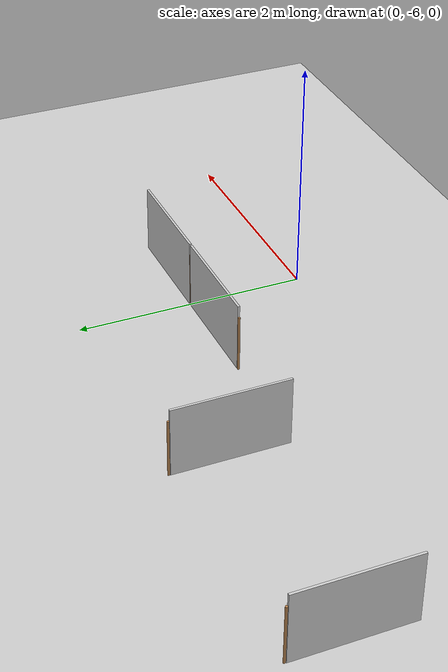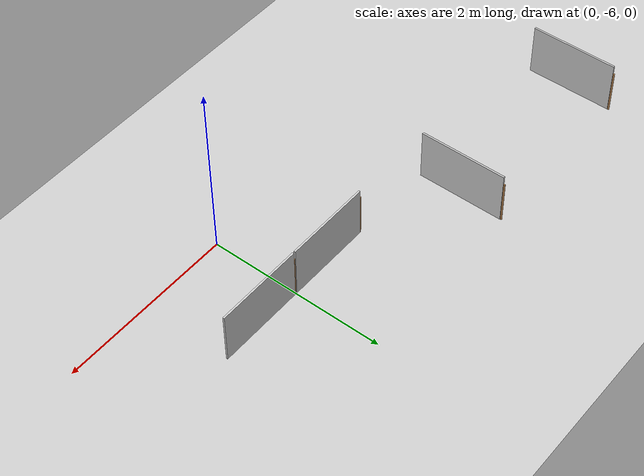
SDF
<sdf version="1.7">
 <world name="default">
  <model name="ground_plane">
   <static>true</static>
   <link name="link">
    <collision name="collision">
     <geometry><plane><normal>0 0 1</normal><size>1 1</size></plane></geometry>
    </collision>
    <visual name="visual">
     <geometry><plane><normal>0 0 1</normal><size>100 100</size></plane></geometry>
     <material>
      <ambient>0.8 0.8 0.8 1</ambient>
      <diffuse>0.8 0.8 0.8 1</diffuse>
      <specular>0.8 0.8 0.8 1</specular>
     </material>
    </visual>
    <inertial>
     <mass>1</mass>
     <inertia><ixx>1</ixx><ixy>0</ixy><ixz>0</ixz><iyy>1</iyy><iyz>0</iyz><izz>1</izz></inertia>
    </inertial>
   </link>
  </model>
  <model name="maze_1_6x5_clone_1">
   <frame name="plywood_panel_0_0_b::__model__" attached_to="plywood_panel_0_0_b::main">
    <pose relative_to="__model__">0 0 0 0 -0 1.571</pose>
   </frame>
   <static>true</static>
   <link name="plywood_panel_0_0_b::main">
    <pose relative_to="plywood_panel_0_0_b::__model__">0 0 0 0 -0 0</pose>
    <collision name="collision">
     <pose>0 -0.5 0.3 -1.571 -0 -1.571</pose>
     <geometry><box><size>0.98 0.6 0.02</size></box></geometry>
    </collision>
    <visual name="visual">
     <pose>0.01 -0.01 0 3.14159 -1.57059 3.14159</pose>
     <geometry>
      <mesh>
       <scale>1 1 1</scale>
       <uri>/home/mayank/cognipilot/cranium/src/dream_world/models/plywood_panel/meshes/plywood.dae</uri>
      </mesh>
     </geometry>
    </visual>
   </link>
   <frame name="wooden_joint_0_0_b::__model__" attached_to="wooden_joint_0_0_b::link_0">
    <pose relative_to="__model__">0 0 0 0 -0 0</pose>
   </frame>
   <link name="wooden_joint_0_0_b::link_0">
    <pose relative_to="wooden_joint_0_0_b::__model__">0 0 0.25 0 -0 0</pose>
    <inertial>
     <mass>0.00215981</mass>
     <inertia>
      <ixx>0.00018028</ixx>
      <ixy>0</ixy>
      <ixz>0</ixz>
      <iyy>0.00018028</iyy>
      <iyz>0</iyz>
      <izz>5.8e-07</izz>
     </inertia>
    </inertial>
    <visual name="visual">
     <geometry><cylinder><radius>0.01</radius><length>0.5</length></cylinder></geometry>
     <material>
      <lighting>1</lighting>
      <script><uri>file://media/materials/scripts/gazebo.material</uri><name>Gazebo/Wood</name></script>
      <shader type="pixel"><normal_map>__default__</normal_map></shader>
      <ambient>0.3 0.3 0.3 1</ambient>
      <diffuse>0.7 0.7 0.7 1</diffuse>
      <specular>0.01 0.01 0.01 1</specular>
      <emissive>0 0 0 1</emissive>
     </material>
    </visual>
    <collision name="collision">
     <geometry><cylinder><radius>0.01</radius><length>0.5</length></cylinder></geometry>
     <surface>
      <friction>
       <ode><mu>1</mu><mu2>1</mu2><fdir1>0 0 0</fdir1><slip1>0</slip1><slip2>0</slip2></ode>
       <torsional>
        <coefficient>1</coefficient>
        <patch_radius>0</patch_radius>
        <surface_radius>0</surface_radius>
        <use_patch_radius>1</use_patch_radius>
        <ode><slip>0</slip></ode>
       </torsional>
      </friction>
      <bounce><restitution_coefficient>0</restitution_coefficient><threshold>1e+06</threshold></bounce>
      <contact>
       <collide_without_contact>0</collide_without_contact>
       <collide_without_contact_bitmask>1</collide_without_contact_bitmask>
       <collide_bitmask>1</collide_bitmask>
       <ode>
        <soft_cfm>0</soft_cfm>
        <soft_erp>0.2</soft_erp>
        <kp>1e+13</kp>
        <kd>1</kd>
        <max_vel>0.01</max_vel>
        <min_depth>0</min_depth>
       </ode>
       <bullet>
        <split_impulse>1</split_impulse>
        <split_impulse_penetration_threshold>-0.01</split_impulse_penetration_threshold>
        <soft_cfm>0</soft_cfm>
        <soft_erp>0.2</soft_erp>
        <kp>1e+13</kp>
        <kd>1</kd>
       </bullet>
      </contact>
     </surface>
    </collision>
   </link>
   <static>true</static>
   <pose>-2 -4 0 0 0 -1.5708</pose>
  </model>
  <model name="maze_1_6x5_clone_2_clone">
   <frame name="plywood_panel_0_0_b::__model__" attached_to="plywood_panel_0_0_b::main">
    <pose relative_to="__model__">0 0 0 0 -0 1.571</pose>
   </frame>
   <static>true</static>
   <link name="plywood_panel_0_0_b::main">
    <pose relative_to="plywood_panel_0_0_b::__model__">0 0 0 0 -0 0</pose>
    <collision name="collision">
     <pose>0 -0.5 0.3 -1.571 -0 -1.571</pose>
     <geometry><box><size>0.98 0.6 0.02</size></box></geometry>
    </collision>
    <visual name="visual">
     <pose>0.01 -0.01 0 3.14159 -1.57059 3.14159</pose>
     <geometry>
      <mesh>
       <scale>1 1 1</scale>
       <uri>/home/mayank/cognipilot/cranium/src/dream_world/models/plywood_panel/meshes/plywood.dae</uri>
      </mesh>
     </geometry>
    </visual>
   </link>
   <frame name="wooden_joint_0_0_b::__model__" attached_to="wooden_joint_0_0_b::link_0">
    <pose relative_to="__model__">0 0 0 0 -0 0</pose>
   </frame>
   <link name="wooden_joint_0_0_b::link_0">
    <pose relative_to="wooden_joint_0_0_b::__model__">0 0 0.25 0 -0 0</pose>
    <inertial>
     <mass>0.00215981</mass>
     <inertia>
      <ixx>0.00018028</ixx>
      <ixy>0</ixy>
      <ixz>0</ixz>
      <iyy>0.00018028</iyy>
      <iyz>0</iyz>
      <izz>5.8e-07</izz>
     </inertia>
    </inertial>
    <visual name="visual">
     <geometry><cylinder><radius>0.01</radius><length>0.5</length></cylinder></geometry>
     <material>
      <lighting>1</lighting>
      <script><uri>file://media/materials/scripts/gazebo.material</uri><name>Gazebo/Wood</name></script>
      <shader type="pixel"><normal_map>__default__</normal_map></shader>
      <ambient>0.3 0.3 0.3 1</ambient>
      <diffuse>0.7 0.7 0.7 1</diffuse>
      <specular>0.01 0.01 0.01 1</specular>
      <emissive>0 0 0 1</emissive>
     </material>
    </visual>
    <collision name="collision">
     <geometry><cylinder><radius>0.01</radius><length>0.5</length></cylinder></geometry>
     <surface>
      <friction>
       <ode><mu>1</mu><mu2>1</mu2><fdir1>0 0 0</fdir1><slip1>0</slip1><slip2>0</slip2></ode>
       <torsional>
        <coefficient>1</coefficient>
        <patch_radius>0</patch_radius>
        <surface_radius>0</surface_radius>
        <use_patch_radius>1</use_patch_radius>
        <ode><slip>0</slip></ode>
       </torsional>
      </friction>
      <bounce><restitution_coefficient>0</restitution_coefficient><threshold>1e+06</threshold></bounce>
      <contact>
       <collide_without_contact>0</collide_without_contact>
       <collide_without_contact_bitmask>1</collide_without_contact_bitmask>
       <collide_bitmask>1</collide_bitmask>
       <ode>
        <soft_cfm>0</soft_cfm>
        <soft_erp>0.2</soft_erp>
        <kp>1e+13</kp>
        <kd>1</kd>
        <max_vel>0.01</max_vel>
        <min_depth>0</min_depth>
       </ode>
       <bullet>
        <split_impulse>1</split_impulse>
        <split_impulse_penetration_threshold>-0.01</split_impulse_penetration_threshold>
        <soft_cfm>0</soft_cfm>
        <soft_erp>0.2</soft_erp>
        <kp>1e+13</kp>
        <kd>1</kd>
       </bullet>
      </contact>
     </surface>
    </collision>
   </link>
   <static>true</static>
   <pose>-1 -5 0 0 0 -4e-06</pose>
  </model>
  <model name="maze_1_6x5_clone_2_clone_clone">
   <frame name="plywood_panel_0_0_b::__model__" attached_to="plywood_panel_0_0_b::main">
    <pose relative_to="__model__">0 0 0 0 -0 1.571</pose>
   </frame>
   <static>true</static>
   <link name="plywood_panel_0_0_b::main">
    <pose relative_to="plywood_panel_0_0_b::__model__">0 0 0 0 -0 0</pose>
    <collision name="collision">
     <pose>0 -0.5 0.3 -1.571 -0 -1.571</pose>
     <geometry><box><size>0.98 0.6 0.02</size></box></geometry>
    </collision>
    <visual name="visual">
     <pose>0.01 -0.01 0 3.14159 -1.57059 3.14159</pose>
     <geometry>
      <mesh>
       <scale>1 1 1</scale>
       <uri>/home/mayank/cognipilot/cranium/src/dream_world/models/plywood_panel/meshes/plywood.dae</uri>
      </mesh>
     </geometry>
    </visual>
   </link>
   <frame name="wooden_joint_0_0_b::__model__" attached_to="wooden_joint_0_0_b::link_0">
    <pose relative_to="__model__">0 0 0 0 -0 0</pose>
   </frame>
   <link name="wooden_joint_0_0_b::link_0">
    <pose relative_to="wooden_joint_0_0_b::__model__">0 0 0.25 0 -0 0</pose>
    <inertial>
     <mass>0.00215981</mass>
     <inertia>
      <ixx>0.00018028</ixx>
      <ixy>0</ixy>
      <ixz>0</ixz>
      <iyy>0.00018028</iyy>
      <iyz>0</iyz>
      <izz>5.8e-07</izz>
     </inertia>
    </inertial>
    <visual name="visual">
     <geometry><cylinder><radius>0.01</radius><length>0.5</length></cylinder></geometry>
     <material>
      <lighting>1</lighting>
      <script><uri>file://media/materials/scripts/gazebo.material</uri><name>Gazebo/Wood</name></script>
      <shader type="pixel"><normal_map>__default__</normal_map></shader>
      <ambient>0.3 0.3 0.3 1</ambient>
      <diffuse>0.7 0.7 0.7 1</diffuse>
      <specular>0.01 0.01 0.01 1</specular>
      <emissive>0 0 0 1</emissive>
     </material>
    </visual>
    <collision name="collision">
     <geometry><cylinder><radius>0.01</radius><length>0.5</length></cylinder></geometry>
     <surface>
      <friction>
       <ode><mu>1</mu><mu2>1</mu2><fdir1>0 0 0</fdir1><slip1>0</slip1><slip2>0</slip2></ode>
       <torsional>
        <coefficient>1</coefficient>
        <patch_radius>0</patch_radius>
        <surface_radius>0</surface_radius>
        <use_patch_radius>1</use_patch_radius>
        <ode><slip>0</slip></ode>
       </torsional>
      </friction>
      <bounce><restitution_coefficient>0</restitution_coefficient><threshold>1e+06</threshold></bounce>
      <contact>
       <collide_without_contact>0</collide_without_contact>
       <collide_without_contact_bitmask>1</collide_without_contact_bitmask>
       <collide_bitmask>1</collide_bitmask>
       <ode>
        <soft_cfm>0</soft_cfm>
        <soft_erp>0.2</soft_erp>
        <kp>1e+13</kp>
        <kd>1</kd>
        <max_vel>0.01</max_vel>
        <min_depth>0</min_depth>
       </ode>
       <bullet>
        <split_impulse>1</split_impulse>
        <split_impulse_penetration_threshold>-0.01</split_impulse_penetration_threshold>
        <soft_cfm>0</soft_cfm>
        <soft_erp>0.2</soft_erp>
        <kp>1e+13</kp>
        <kd>1</kd>
       </bullet>
      </contact>
     </surface>
    </collision>
   </link>
   <static>true</static>
   <pose>0 -5 0 0 0 -4e-06</pose>
  </model>
  <model name="maze_1_6x5_clone_clone_11">
   <frame name="plywood_panel_0_0_b::__model__" attached_to="plywood_panel_0_0_b::main">
    <pose relative_to="__model__">0 0 0 0 -0 1.571</pose>
   </frame>
   <static>true</static>
   <link name="plywood_panel_0_0_b::main">
    <pose relative_to="plywood_panel_0_0_b::__model__">0 0 0 0 -0 0</pose>
    <collision name="collision">
     <pose>0 -0.5 0.3 -1.571 -0 -1.571</pose>
     <geometry><box><size>0.98 0.6 0.02</size></box></geometry>
    </collision>
    <visual name="visual">
     <pose>0.01 -0.01 0 3.14159 -1.57059 3.14159</pose>
     <geometry>
      <mesh>
       <scale>1 1 1</scale>
       <uri>/home/mayank/cognipilot/cranium/src/dream_world/models/plywood_panel/meshes/plywood.dae</uri>
      </mesh>
     </geometry>
    </visual>
   </link>
   <frame name="wooden_joint_0_0_b::__model__" attached_to="wooden_joint_0_0_b::link_0">
    <pose relative_to="__model__">0 0 0 0 -0 0</pose>
   </frame>
   <link name="wooden_joint_0_0_b::link_0">
    <pose relative_to="wooden_joint_0_0_b::__model__">0 0 0.25 0 -0 0</pose>
    <inertial>
     <mass>0.00215981</mass>
     <inertia>
      <ixx>0.00018028</ixx>
      <ixy>0</ixy>
      <ixz>0</ixz>
      <iyy>0.00018028</iyy>
      <iyz>0</iyz>
      <izz>5.8e-07</izz>
     </inertia>
    </inertial>
    <visual name="visual">
     <geometry><cylinder><radius>0.01</radius><length>0.5</length></cylinder></geometry>
     <material>
      <lighting>1</lighting>
      <script><uri>file://media/materials/scripts/gazebo.material</uri><name>Gazebo/Wood</name></script>
      <shader type="pixel"><normal_map>__default__</normal_map></shader>
      <ambient>0.3 0.3 0.3 1</ambient>
      <diffuse>0.7 0.7 0.7 1</diffuse>
      <specular>0.01 0.01 0.01 1</specular>
      <emissive>0 0 0 1</emissive>
     </material>
    </visual>
    <collision name="collision">
     <geometry><cylinder><radius>0.01</radius><length>0.5</length></cylinder></geometry>
     <surface>
      <friction>
       <ode><mu>1</mu><mu2>1</mu2><fdir1>0 0 0</fdir1><slip1>0</slip1><slip2>0</slip2></ode>
       <torsional>
        <coefficient>1</coefficient>
        <patch_radius>0</patch_radius>
        <surface_radius>0</surface_radius>
        <use_patch_radius>1</use_patch_radius>
        <ode><slip>0</slip></ode>
       </torsional>
      </friction>
      <bounce><restitution_coefficient>0</restitution_coefficient><threshold>1e+06</threshold></bounce>
      <contact>
       <collide_without_contact>0</collide_without_contact>
       <collide_without_contact_bitmask>1</collide_without_contact_bitmask>
       <collide_bitmask>1</collide_bitmask>
       <ode>
        <soft_cfm>0</soft_cfm>
        <soft_erp>0.2</soft_erp>
        <kp>1e+13</kp>
        <kd>1</kd>
        <max_vel>0.01</max_vel>
        <min_depth>0</min_depth>
       </ode>
       <bullet>
        <split_impulse>1</split_impulse>
        <split_impulse_penetration_threshold>-0.01</split_impulse_penetration_threshold>
        <soft_cfm>0</soft_cfm>
        <soft_erp>0.2</soft_erp>
        <kp>1e+13</kp>
        <kd>1</kd>
       </bullet>
      </contact>
     </surface>
    </collision>
   </link>
   <static>true</static>
   <pose>-4 -4 0 0 0 -1.5708</pose>
  </model>
 </world>
</sdf>
